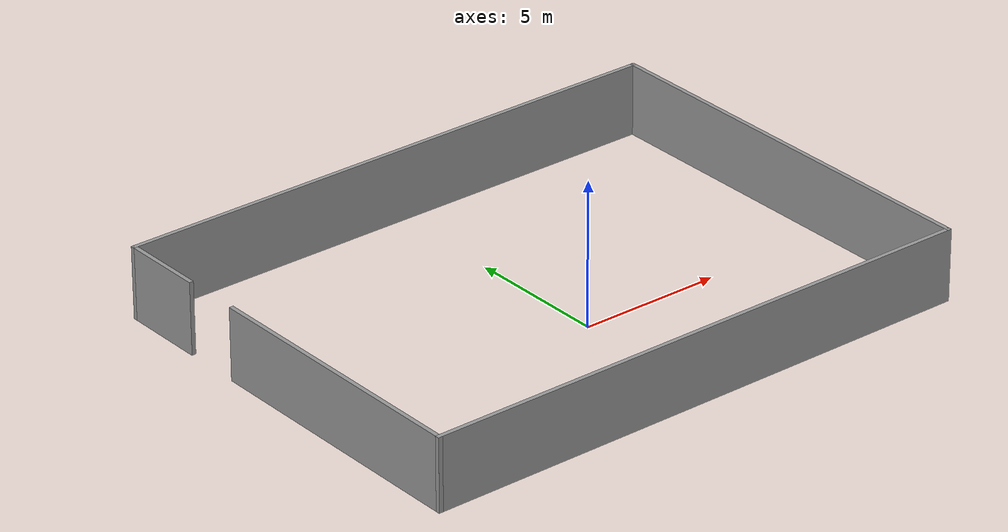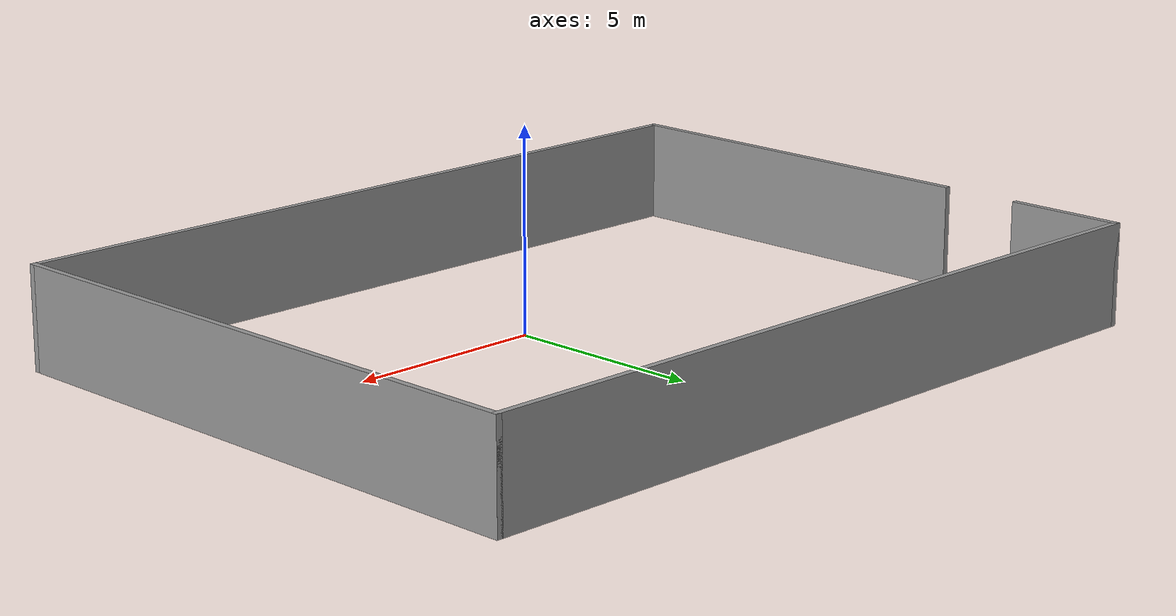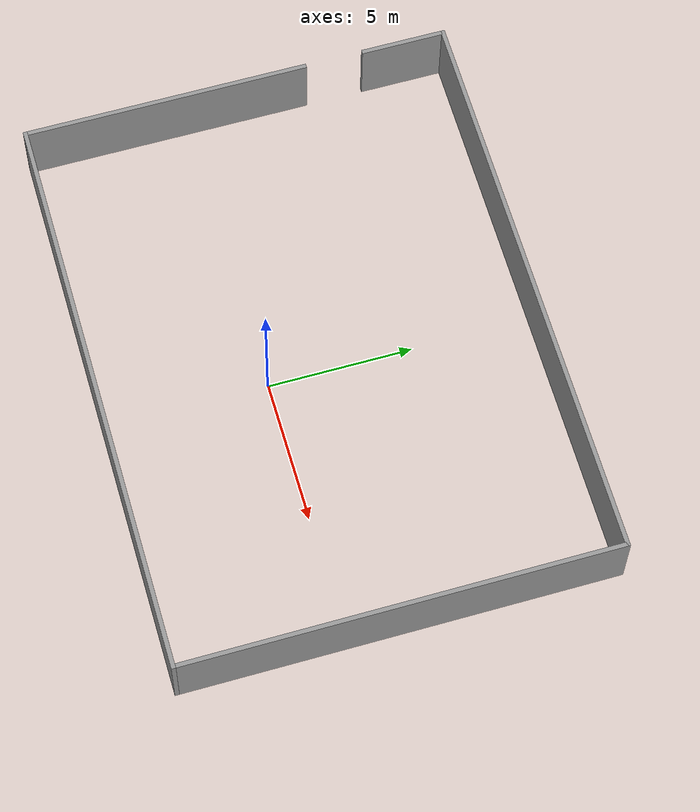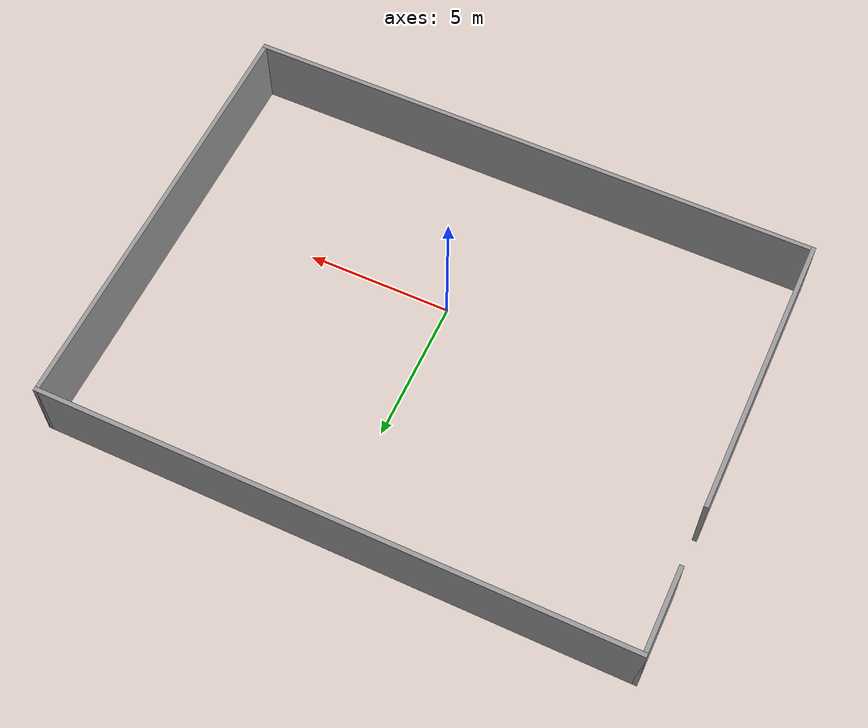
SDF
<?xml version='1.0'?>
<sdf version='1.7'>
  <model name='itu_walls'>
    <pose>-0.34534 1.74375 0 0 -0 0</pose>
    <link name='Wall_2'>
      <collision name='Wall_2_Collision'>
        <geometry>
          <box>
            <size>20 0.15 2.5</size>
          </box>
        </geometry>
        <pose>0 0 1.25 0 -0 0</pose>
      </collision>
      <visual name='Wall_2_Visual'>
        <pose>0 0 1.25 0 -0 0</pose>
        <geometry>
          <box>
            <size>20 0.15 2.5</size>
          </box>
        </geometry>
        <material>
          <script>
            <uri>file://media/materials/scripts/gazebo.material</uri>
            <name>Gazebo/Grey</name>
          </script>
          <ambient>1 1 1 1</ambient>
        </material>
        <meta>
          <layer>0</layer>
        </meta>
      </visual>
      <pose>0 7.425 0 0 -0 0</pose>
    </link>
    <link name='Wall_3'>
      <collision name='Wall_3_Collision'>
        <geometry>
          <box>
            <size>15 0.15 2.5</size>
          </box>
        </geometry>
        <pose>0 0 1.25 0 -0 0</pose>
      </collision>
      <visual name='Wall_3_Visual'>
        <pose>0 0 1.25 0 -0 0</pose>
        <geometry>
          <box>
            <size>15 0.15 2.5</size>
          </box>
        </geometry>
        <material>
          <script>
            <uri>file://media/materials/scripts/gazebo.material</uri>
            <name>Gazebo/Grey</name>
          </script>
          <ambient>1 1 1 1</ambient>
        </material>
        <meta>
          <layer>0</layer>
        </meta>
      </visual>
      <pose>9.925 0 0 0 -0 -1.5708</pose>
    </link>
    <link name='Wall_4'>
      <collision name='Wall_4_Collision'>
        <geometry>
          <box>
            <size>20 0.15 2.5</size>
          </box>
        </geometry>
        <pose>0 0 1.25 0 -0 0</pose>
      </collision>
      <visual name='Wall_4_Visual'>
        <pose>0 0 1.25 0 -0 0</pose>
        <geometry>
          <box>
            <size>20 0.15 2.5</size>
          </box>
        </geometry>
        <material>
          <script>
            <uri>file://media/materials/scripts/gazebo.material</uri>
            <name>Gazebo/Grey</name>
          </script>
          <ambient>1 1 1 1</ambient>
        </material>
        <meta>
          <layer>0</layer>
        </meta>
      </visual>
      <pose>0 -7.425 0 0 -0 3.14159</pose>
    </link>
    <link name='Wall_5'>
      <collision name='Wall_5_Collision'>
        <geometry>
          <box>
            <size>10 0.15 2.5</size>
          </box>
        </geometry>
        <pose>0 0 1.25 0 -0 0</pose>
      </collision>
      <visual name='Wall_5_Visual'>
        <pose>0 0 1.25 0 -0 0</pose>
        <geometry>
          <box>
            <size>10 0.15 2.5</size>
          </box>
        </geometry>
        <material>
          <script>
            <uri>file://media/materials/scripts/gazebo.material</uri>
            <name>Gazebo/Grey</name>
          </script>
          <ambient>1 1 1 1</ambient>
        </material>
        <meta>
          <layer>0</layer>
        </meta>
      </visual>
      <pose>-9.925 -2.5 0 0 -0 1.5708</pose>
    </link>
    <link name='Wall_7'>
      <collision name='Wall_7_Collision'>
        <geometry>
          <box>
            <size>3 0.15 2.5</size>
          </box>
        </geometry>
        <pose>0 0 1.25 0 -0 0</pose>
      </collision>
      <visual name='Wall_7_Visual'>
        <pose>0 0 1.25 0 -0 0</pose>
        <geometry>
          <box>
            <size>3 0.15 2.5</size>
          </box>
        </geometry>
        <material>
          <script>
            <uri>file://media/materials/scripts/gazebo.material</uri>
            <name>Gazebo/Grey</name>
          </script>
          <ambient>1 1 1 1</ambient>
        </material>
        <meta>
          <layer>0</layer>
        </meta>
      </visual>
      <pose>-9.925 6 0 0 -0 -1.5708</pose>
    </link>
    <static>1</static>
  </model>
</sdf>
